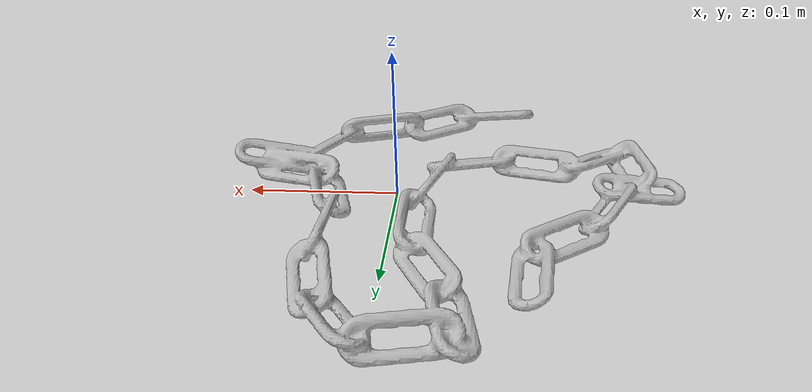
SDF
<?xml version='1.0'?>
<sdf version="1.4">
  <model name="chain">
    <static>false</static>
    <link name="link">
      <inertial>
        <pose>-0.034274940120650695 0.018175325943306266 0.009010247611937368 1.0572172745720791 -1.5612055829470524 -3.051669145964336</pose>
        <mass>0.00011189363696047932</mass>
        <inertia>
          <ixx>1.3307905578269502e-06</ixx>
          <ixy>2.9706615307710403e-24</ixy>
          <ixz>2.830200646146508e-23</ixz>
          <iyy>7.338900067550512e-07</iyy>
          <iyz>-4.663563268167356e-23</iyz>
          <izz>6.025740314983342e-07</izz>
        </inertia>
      </inertial>
      <collision name="collision">
        <geometry>
          <!-- Use a downsampled mesh for collisions -->
          <mesh>
            <uri>model://059_chain/google_16k/low_poly.obj</uri>
	        </mesh>
        </geometry>
        <surface>
      </surface>
      </collision>
      <visual name="visual">
        <geometry>
          <mesh>
            <uri>model://059_chain/google_16k/textured.obj</uri>
	        </mesh>
        </geometry>
        <material>
          <script>
            <uri>model://059_chain/chain.material</uri>
            <name>chain</name>
          </script>
        </material>
      </visual>
    </link>
  </model>
</sdf>
